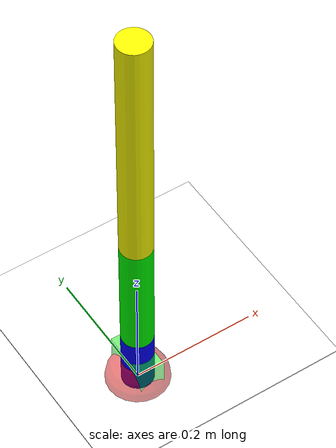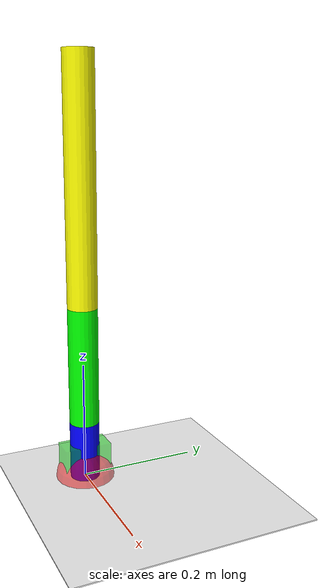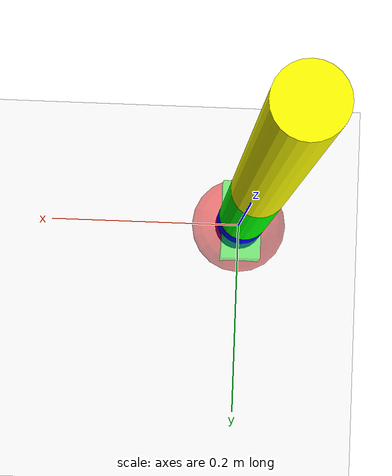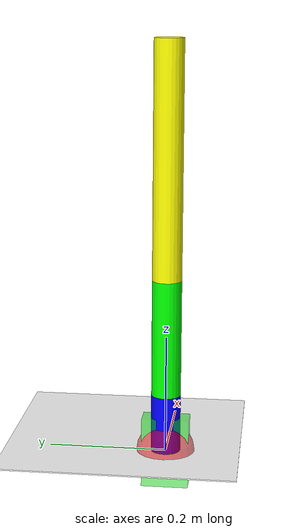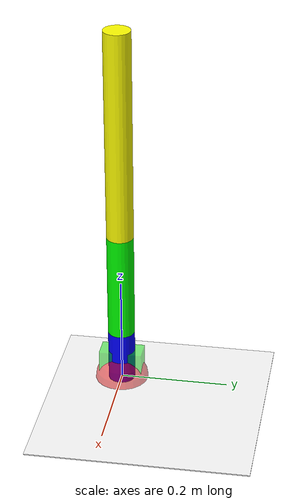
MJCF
<mujoco model="twojoint">

    <custom>
        <numeric name="START_ANGLES" data="0.0 0.0"/>
    </custom>

    <contact>
        <exclude body1="hand" body2="EE"/>
        <exclude body1="hand" body2="base_link"/>
        <exclude body1="hand" body2="link1"/>
        <exclude body1="hand" body2="link2"/>

        <exclude body1="target" body2="EE"/>
        <exclude body1="target" body2="base_link"/>
        <exclude body1="target" body2="link1"/>
        <exclude body1="target" body2="link2"/>
    </contact>

    <worldbody>
        <body name="hand" pos="0 0 0" mocap="true">
            <geom type="box" size=".02 .04 .06" rgba="0 .9 0 .5" contype="2"/>
            <inertial pos="0 0 0" mass="0" diaginertia="0 0 0" />
        </body>
        <body name="target" pos="0 0 0" mocap="true">
            <geom type="sphere" size="0.05" rgba=".9 0 0 .5"/>
            <inertial pos="0 0 0" mass="0" diaginertia="0 0 0" />
        </body>

        <body name="floor" pos="0 0 0" mocap="true">
            <geom type="box" size="1 1 0.001" rgba="0.99 0.99 0.99 1" contype="2"/>
            <inertial pos="0 0 0" mass="0" diaginertia="0 0 0" />
        </body>

        <light pos="0 1 1" dir="0 -1 -1" diffuse="1 1 1"/>

        <body name="base_link" pos="0 0 0.05">
            <geom name="link0" type="cylinder" pos="0 0 0" size="0.025 0.05" rgba="0 0 1 0.9"/>
            <inertial pos="0 0 0" mass="0" diaginertia="0 0 0" />

            <body name="link1" pos="0 0 0.05">
                <joint name='joint0' pos="0 0 0" axis="0 0 1"/>
                <inertial pos="0 0 0.1" mass="2" diaginertia="0.226891 0.226891 0.0151074" />
                <geom name="link1" type="cylinder" pos="0 0 0.1" size="0.025 0.1" rgba="0 1 0 0.9"/>

                <body name="link2" pos="0 0 0.2">
                    <joint name='joint1' pos="0 0 0" axis="0 1 0"/>
                    <inertial pos="0 0 0.2" mass="2" diaginertia="0.226891 0.226891 0.0151074" />
                    <geom name="link2" type="cylinder" pos="0 0 0.2" size="0.025 0.2" rgba="1 1 0 0.9"/>

                    <body name="EE" pos="0 0 .4">
                        <inertial pos="0 0 0" mass="0" diaginertia="0.0 0.0 0.0" />
                    </body>

                </body>

            </body>

        </body>

    </worldbody>

    <actuator>
        <motor name="joint0_motor" joint="joint0"/>
        <motor name="joint1_motor" joint="joint1"/>
    </actuator>

</mujoco>
